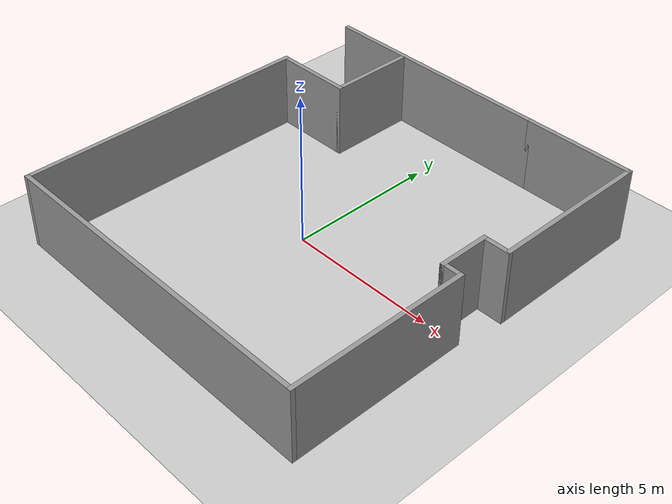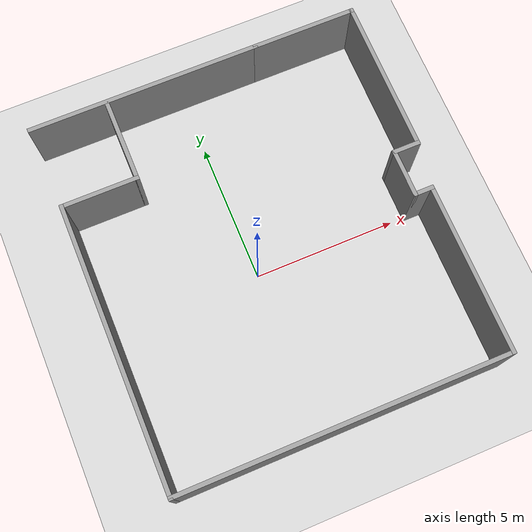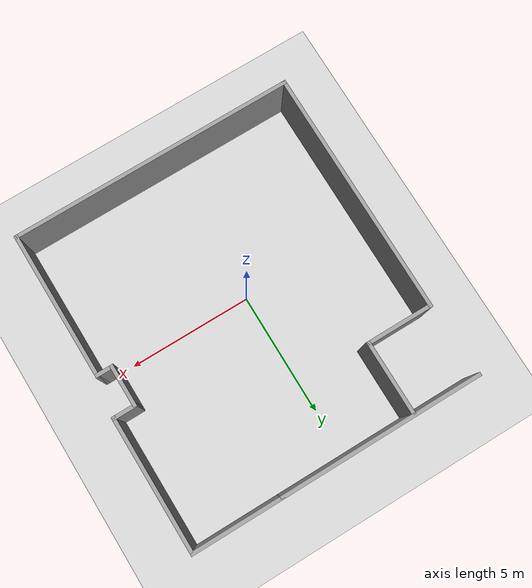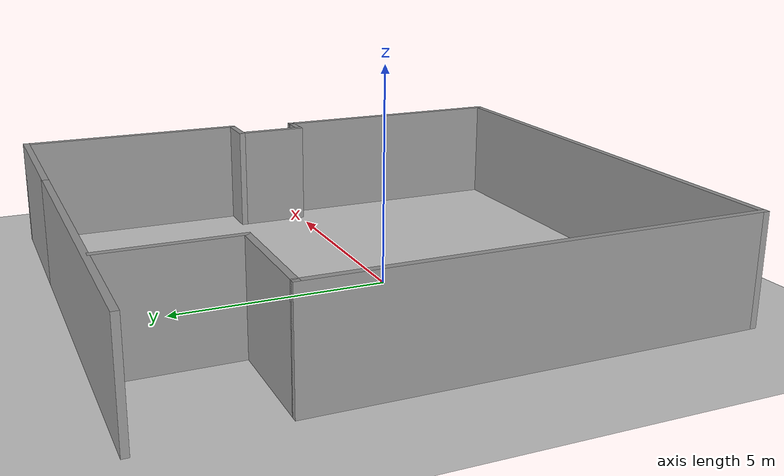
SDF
<sdf version="1.6">
 <world name="default">
  <light name="sun" type="directional">
   <pose>0 0 10 0 -0 0</pose>
   <diffuse>0.8 0.8 0.8 1</diffuse>
   <specular>0.2 0.2 0.2 1</specular>
   <attenuation>
    <range>1000</range>
    <constant>0.9</constant>
    <linear>0.01</linear>
    <quadratic>0.001</quadratic>
   </attenuation>
   <direction>-0.5 0.1 -0.9</direction>
  </light>
  <model name="ground_plane">
   <static>1</static>
   <link name="link">
    <collision name="collision">
     <geometry><plane><normal>0 0 1</normal><size>100 100</size></plane></geometry>
     <surface>
      <contact><collide_bitmask>65535</collide_bitmask></contact>
      <friction><ode><mu>100</mu><mu2>50</mu2></ode></friction>
     </surface>
    </collision>
    <visual name="visual">
     <cast_shadows>0</cast_shadows>
     <geometry><plane><normal>0 0 1</normal><size>100 100</size></plane></geometry>
     <material>
      <script><uri>file://media/materials/scripts/gazebo.material</uri><name>Gazebo/Grey</name></script>
     </material>
    </visual>
   </link>
  </model>
  <gravity>0 0 -9.8</gravity>
  <magnetic_field>6e-06 2.3e-05 -4.2e-05</magnetic_field>
  <atmosphere type="adiabatic"/>
  <physics name="default_physics" default="0" type="ode">
   <max_step_size>0.001</max_step_size>
   <real_time_factor>1</real_time_factor>
   <real_time_update_rate>1000</real_time_update_rate>
  </physics>
  <scene><ambient>0.4 0.4 0.4 1</ambient><background>0.7 0.7 0.7 1</background><shadows>1</shadows></scene>
  <spherical_coordinates>
   <surface_model>EARTH_WGS84</surface_model>
   <latitude_deg>0</latitude_deg>
   <longitude_deg>0</longitude_deg>
   <elevation>0</elevation>
   <heading_deg>0</heading_deg>
  </spherical_coordinates>
  <model name="Untitled_0">
   <pose>0.530225 0.536625 0 0 -0 0</pose>
   <link name="Wall_0">
    <collision name="Wall_0_Collision">
     <geometry><box><size>8.25 0.15 2.5</size></box></geometry>
     <pose>0 0 1.25 0 -0 0</pose>
    </collision>
    <visual name="Wall_0_Visual">
     <pose>0 0 1.25 0 -0 0</pose>
     <geometry><box><size>8.25 0.15 2.5</size></box></geometry>
     <material>
      <script><uri>file://media/materials/scripts/gazebo.material</uri><name>Gazebo/Grey</name></script>
      <ambient>1 1 1 1</ambient>
     </material>
     <meta><layer>0</layer></meta>
    </visual>
    <pose>-1.8 6.4 0 0 -0 0</pose>
   </link>
   <link name="Wall_10">
    <collision name="Wall_10_Collision">
     <geometry><box><size>11.5 0.15 2.5</size></box></geometry>
     <pose>0 0 1.25 0 -0 0</pose>
    </collision>
    <visual name="Wall_10_Visual">
     <pose>0 0 1.25 0 -0 0</pose>
     <geometry><box><size>11.5 0.15 2.5</size></box></geometry>
     <material>
      <script><uri>file://media/materials/scripts/gazebo.material</uri><name>Gazebo/Grey</name></script>
      <ambient>1 1 1 1</ambient>
     </material>
     <meta><layer>0</layer></meta>
    </visual>
    <pose>-0.075 -6.4 0 0 -0 3.14159</pose>
   </link>
   <link name="Wall_11">
    <collision name="Wall_11_Collision">
     <geometry><box><size>10 0.15 2.5</size></box></geometry>
     <pose>0 0 1.25 0 -0 0</pose>
    </collision>
    <visual name="Wall_11_Visual">
     <pose>0 0 1.25 0 -0 0</pose>
     <geometry><box><size>10 0.15 2.5</size></box></geometry>
     <material>
      <script><uri>file://media/materials/scripts/gazebo.material</uri><name>Gazebo/Grey</name></script>
      <ambient>1 1 1 1</ambient>
     </material>
     <meta><layer>0</layer></meta>
    </visual>
    <pose>-5.75 -1.475 0 0 -0 1.5708</pose>
   </link>
   <link name="Wall_12">
    <collision name="Wall_12_Collision">
     <geometry><box><size>2.75 0.15 2.5</size></box></geometry>
     <pose>0 0 1.25 0 -0 0</pose>
    </collision>
    <visual name="Wall_12_Visual">
     <pose>0 0 1.25 0 -0 0</pose>
     <geometry><box><size>2.75 0.15 2.5</size></box></geometry>
     <material>
      <script><uri>file://media/materials/scripts/gazebo.material</uri><name>Gazebo/Grey</name></script>
      <ambient>1 1 1 1</ambient>
     </material>
     <meta><layer>0</layer></meta>
    </visual>
    <pose>-4.45 3.45 0 0 -0 0</pose>
   </link>
   <link name="Wall_13">
    <collision name="Wall_13_Collision">
     <geometry><box><size>3 0.15 2.5</size></box></geometry>
     <pose>0 0 1.25 0 -0 0</pose>
    </collision>
    <visual name="Wall_13_Visual">
     <pose>0 0 1.25 0 -0 0</pose>
     <geometry><box><size>3 0.15 2.5</size></box></geometry>
     <material>
      <script><uri>file://media/materials/scripts/gazebo.material</uri><name>Gazebo/Grey</name></script>
      <ambient>1 1 1 1</ambient>
     </material>
     <meta><layer>0</layer></meta>
    </visual>
    <pose>-3.15 4.875 0 0 -0 1.5708</pose>
   </link>
   <link name="Wall_2">
    <collision name="Wall_2_Collision">
     <geometry><box><size>3.75 0.15 2.5</size></box></geometry>
     <pose>0 0 1.25 0 -0 0</pose>
    </collision>
    <visual name="Wall_2_Visual">
     <pose>0 0 1.25 0 -0 0</pose>
     <geometry><box><size>3.75 0.15 2.5</size></box></geometry>
     <material>
      <script><uri>file://media/materials/scripts/gazebo.material</uri><name>Gazebo/Grey</name></script>
      <ambient>1 1 1 1</ambient>
     </material>
     <meta><layer>0</layer></meta>
    </visual>
    <pose>4.05 6.4 0 0 -0 0</pose>
   </link>
   <link name="Wall_3">
    <collision name="Wall_3_Collision">
     <geometry><box><size>5.5 0.15 2.5</size></box></geometry>
     <pose>0 0 1.25 0 -0 0</pose>
    </collision>
    <visual name="Wall_3_Visual">
     <pose>0 0 1.25 0 -0 0</pose>
     <geometry><box><size>5.5 0.15 2.5</size></box></geometry>
     <material>
      <script><uri>file://media/materials/scripts/gazebo.material</uri><name>Gazebo/Grey</name></script>
      <ambient>1 1 1 1</ambient>
     </material>
     <meta><layer>0</layer></meta>
    </visual>
    <pose>5.85 3.725 0 0 0 -1.5708</pose>
   </link>
   <link name="Wall_4">
    <collision name="Wall_4_Collision">
     <geometry><box><size>1 0.15 2.5</size></box></geometry>
     <pose>0 0 1.25 0 -0 0</pose>
    </collision>
    <visual name="Wall_4_Visual">
     <pose>0 0 1.25 0 -0 0</pose>
     <geometry><box><size>1 0.15 2.5</size></box></geometry>
     <material>
      <script><uri>file://media/materials/scripts/gazebo.material</uri><name>Gazebo/Grey</name></script>
      <ambient>1 1 1 1</ambient>
     </material>
     <meta><layer>0</layer></meta>
    </visual>
    <pose>5.425 1.05 0 0 -0 3.14159</pose>
   </link>
   <link name="Wall_5">
    <collision name="Wall_5_Collision">
     <geometry><box><size>1.75 0.15 2.5</size></box></geometry>
     <pose>0 0 1.25 0 -0 0</pose>
    </collision>
    <visual name="Wall_5_Visual">
     <pose>0 0 1.25 0 -0 0</pose>
     <geometry><box><size>1.75 0.15 2.5</size></box></geometry>
     <material>
      <script><uri>file://media/materials/scripts/gazebo.material</uri><name>Gazebo/Grey</name></script>
      <ambient>1 1 1 1</ambient>
     </material>
     <meta><layer>0</layer></meta>
    </visual>
    <pose>5 0.25 0 0 0 -1.5708</pose>
   </link>
   <link name="Wall_6">
    <collision name="Wall_6_Collision">
     <geometry><box><size>0.75 0.15 2.5</size></box></geometry>
     <pose>0 0 1.25 0 -0 0</pose>
    </collision>
    <visual name="Wall_6_Visual">
     <pose>0 0 1.25 0 -0 0</pose>
     <geometry><box><size>0.75 0.15 2.5</size></box></geometry>
     <material>
      <script><uri>file://media/materials/scripts/gazebo.material</uri><name>Gazebo/Grey</name></script>
      <ambient>1 1 1 1</ambient>
     </material>
     <meta><layer>0</layer></meta>
    </visual>
    <pose>5.3 -0.55 0 0 -0 0</pose>
   </link>
   <link name="Wall_9">
    <collision name="Wall_9_Collision">
     <geometry><box><size>6 0.15 2.5</size></box></geometry>
     <pose>0 0 1.25 0 -0 0</pose>
    </collision>
    <visual name="Wall_9_Visual">
     <pose>0 0 1.25 0 -0 0</pose>
     <geometry><box><size>6 0.15 2.5</size></box></geometry>
     <material>
      <script><uri>file://media/materials/scripts/gazebo.material</uri><name>Gazebo/Grey</name></script>
      <ambient>1 1 1 1</ambient>
     </material>
     <meta><layer>0</layer></meta>
    </visual>
    <pose>5.6 -3.475 0 0 0 -1.5708</pose>
   </link>
   <static>1</static>
  </model>
 </world>
</sdf>
